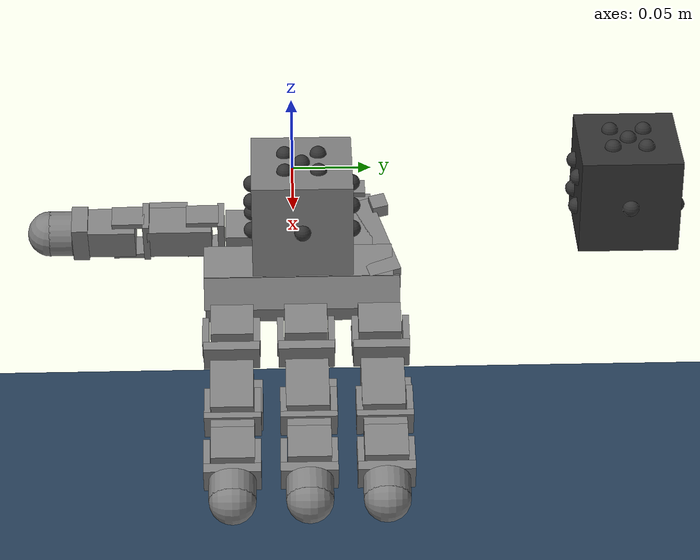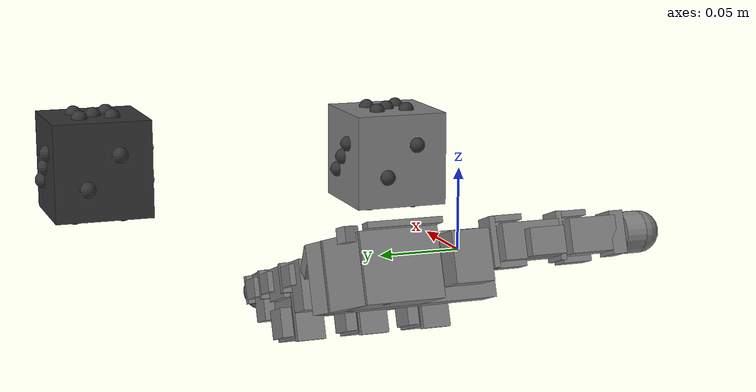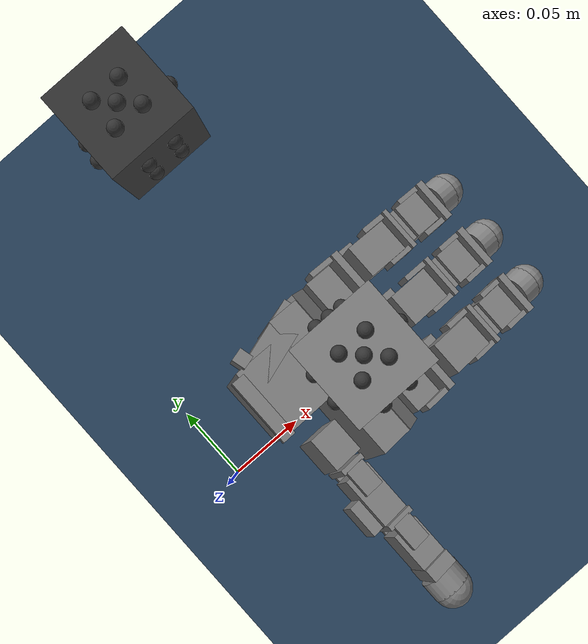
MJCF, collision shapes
<mujoco model="caltech_leap_cube">
  <include file="caltech_leap_components/assets.xml" />
  <include file="caltech_leap_components/params_and_default_sim.xml" />

  <worldbody>
    <!-- Ground and light -->
    <light pos="0 0 3" dir="0 0 -1" directional="false" />
    <body name="floor" pos="0 0 0">
      <geom name="floor" pos="0 0 -1.25" size="10 10 1" type="box" material="groundplane" />
    </body>

    <!-- goal cube -->
    <body name="goal" mocap="true" pos="0.1 0.2 0.0475">
      <include file="leap_components/cube_pips_vis.xml" />
    </body>

    <!-- cube and hand -->
    <body name="cube" pos="0.11 0.005 0.04" quat="1 0 0 0">
      <freejoint/>
      <include file="leap_components/cube_pips_coll.xml" />
    </body>
    <body name="leap_hand" pos="0.0 0.0 0.0" quat="1.0 0.0 0.0 0.0">
      <include file="caltech_leap_components/leap_rh.xml" />
    </body>
  </worldbody>

  <!-- Sensors for the cube -->
  <sensor>
    <framepos name="cube_position" objtype="body" objname="cube" reftype="site" refname="grasp_site" />
    <framequat name="cube_orientation" objtype="body" objname="cube" reftype="body" refname="goal"/>
  </sensor>

</mujoco>

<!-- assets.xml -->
<mujoco model="leap_assets">
  <asset>
    <!-- meshes -->
    <mesh name="palm_right" file="../../meshes/leap/palm_right.obj"/>
    <mesh name="base" file="../../meshes/leap/base.obj"/>
    <mesh name="proximal" file="../../meshes/leap/proximal.obj"/>
    <mesh name="medial" file="../../meshes/leap/medial.obj"/>
    <mesh name="distal" file="../../meshes/leap/distal.obj"/>
    <mesh name="tip" file="../../meshes/leap/tip.obj"/>
    <mesh name="thumb_base" file="../../meshes/leap/thumb_base.obj"/>
    <mesh name="thumb_proximal" file="../../meshes/leap/thumb_proximal.obj"/>
    <mesh name="thumb_distal" file="../../meshes/leap/thumb_distal.obj"/>
    <mesh name="thumb_tip" file="../../meshes/leap/thumb_tip.obj"/>
    <mesh name="leap_mount" file="../../meshes/leap/leap_mount.obj"/>

    <!-- scene -->
    <texture type="skybox" builtin="gradient" rgb1="0.3 0.5 0.7" rgb2="0 0 0" width="512"
      height="3072" />
    <texture type="2d" name="groundplane" builtin="checker" mark="edge" rgb1="0.2 0.3 0.4"
      rgb2="0.1 0.2 0.3"
      markrgb="0.8 0.8 0.8" width="300" height="300" />
    <material name="groundplane" texture="groundplane" texuniform="true" texrepeat="5 5"
      reflectance="0.2" />
  </asset>
</mujoco>

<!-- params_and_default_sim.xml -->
<mujoco model="leap_cube_default">
  <compiler angle="radian" />
  <option
    timestep="0.002"
    integrator="implicitfast"
    cone="elliptic"
    impratio="1.0" />

  <asset>
    <material name="black" rgba="0.2 0.2 0.2 1" />
  </asset>

  <!-- Viewpoint and other visual features -->
  <statistic extent="0.4" center="0.3 0.1 0" />
  <visual>
    <quality shadowsize="8192" />
    <global azimuth="180" elevation="-30" offheight="376" offwidth="672" fovy="70" />
    <headlight diffuse="0.6 0.6 0.6" ambient="0.3 0.3 0.3" specular="0 0 0" />
    <rgba haze="0.15 0.25 0.35 1" />
  </visual>

  <!-- defaults -->
  <default>
    <!-- constraint stiffness -->
    <geom solimp="0.99 0.999 0.01 0.001 1" solref="0.001 1" friction=".2"/>

    <!-- actuator defaults -->
    <position kp="0.3" kv="0.1" />
    <joint damping="0.03" frictionloss="0.001"/>

    <!-- geom class defaults -->
    <default class="visual">
      <geom group="1" type="mesh" contype="0" conaffinity="0" density="0" material="black" />
    </default>
    <default class="cube">
      <geom friction="0.3 0.05 0.01"/>
    </default>
    <default class="tip">
      <geom friction="1.0 0.1 0.001"/>
    </default>

    <!-- joint class defaults -->
    <default class="mcp">
      <joint pos="0 0 0" axis="0 0 -1"
        limited="true" range="-0.314 2.23" />
      <position ctrlrange="-0.314 2.23" />
    </default>
    <default class="rot">
      <joint pos="0 0 0" axis="0 0 -1"
        limited="true" range="-1.047 1.047" />
      <position ctrlrange="-1.047 1.047" />
    </default>
    <default class="pip">
      <joint pos="0 0 0" axis="0 0 -1"
        limited="true" range="-0.506 1.885" />
      <position ctrlrange="-0.506 1.885" />
    </default>
    <default class="dip">
      <joint pos="0 0 0" axis="0 0 -1"
        limited="true" range="-0.366 2.042" />
      <position ctrlrange="-0.366 2.042" />
    </default>
    <default class="thumb_cmc">
      <joint pos="0 0 0" axis="0 0 -1"
        limited="true" range="-0.349 2.094" />
      <position ctrlrange="-0.349 2.094" />
    </default>
    <default class="thumb_axl">
      <joint pos="0 0 0" axis="0 0 -1"
        limited="true" range="-0.349 2.094" />
      <position ctrlrange="-0.349 2.094" />
    </default>
    <default class="thumb_mcp">
      <joint pos="0 0 0" axis="0 0 -1"
        limited="true" range="-0.47 2.443" />
      <position ctrlrange="-0.47 2.443" />
    </default>
    <default class="thumb_ipl">
      <joint pos="0 0 0" axis="0 0 -1"
        limited="true" range="-1.34 1.88" />
      <position ctrlrange="-1.34 1.88" />
    </default>
  </default>

  <!-- collision filtering -->
  <contact>
    <!-- filter the palm from all other finger bodies except the tips -->
    <exclude body1="palm_right" body2="if_bs" />
    <exclude body1="palm_right" body2="mf_bs" />
    <exclude body1="palm_right" body2="rf_bs" />
    <exclude body1="palm_right" body2="th_mp" />

    <exclude body1="palm_right" body2="if_px" />
    <exclude body1="palm_right" body2="mf_px" />
    <exclude body1="palm_right" body2="rf_px" />
    <exclude body1="palm_right" body2="th_bs" />

    <exclude body1="palm_right" body2="if_md" />
    <exclude body1="palm_right" body2="mf_md" />
    <exclude body1="palm_right" body2="rf_md" />
    <exclude body1="palm_right" body2="th_px" />

    <!-- none of the base fingertip geoms can touch each other -->
    <exclude body1="if_bs" body2="mf_bs" />
    <exclude body1="if_bs" body2="rf_bs" />
    <exclude body1="mf_bs" body2="rf_bs" />

    <exclude body1="th_mp" body2="if_bs" />
    <exclude body1="th_mp" body2="mf_bs" />
    <exclude body1="th_mp" body2="rf_bs" />

    <!-- filter all hand geoms and floor -->
    <exclude body1="floor" body2="palm_right" />
    <exclude body1="floor" body2="if_bs" />
    <exclude body1="floor" body2="if_px" />
    <exclude body1="floor" body2="if_md" />
    <exclude body1="floor" body2="if_ds" />
    <exclude body1="floor" body2="mf_bs" />
    <exclude body1="floor" body2="mf_px" />
    <exclude body1="floor" body2="mf_md" />
    <exclude body1="floor" body2="mf_ds" />
    <exclude body1="floor" body2="rf_bs" />
    <exclude body1="floor" body2="rf_px" />
    <exclude body1="floor" body2="rf_md" />
    <exclude body1="floor" body2="rf_ds" />
    <exclude body1="floor" body2="th_mp" />
    <exclude body1="floor" body2="th_bs" />
    <exclude body1="floor" body2="th_px" />
    <exclude body1="floor" body2="th_ds" />
  </contact>

  <!-- actuators -->
  <actuator>
    <!-- index -->
    <position name="if_mcp_act" joint="if_mcp" class="mcp" />
    <position name="if_rot_act" joint="if_rot" class="rot" />
    <position name="if_pip_act" joint="if_pip" class="pip" />
    <position name="if_dip_act" joint="if_dip" class="dip" />

    <!-- middle -->
    <position name="mf_mcp_act" joint="mf_mcp" class="mcp" />
    <position name="mf_rot_act" joint="mf_rot" class="rot" />
    <position name="mf_pip_act" joint="mf_pip" class="pip" />
    <position name="mf_dip_act" joint="mf_dip" class="dip" />

    <!-- ring -->
    <position name="rf_mcp_act" joint="rf_mcp" class="mcp" />
    <position name="rf_rot_act" joint="rf_rot" class="rot" />
    <position name="rf_pip_act" joint="rf_pip" class="pip" />
    <position name="rf_dip_act" joint="rf_dip" class="dip" />

    <!-- thumb -->
    <position name="th_cmc_act" joint="th_cmc" class="thumb_cmc" />
    <position name="th_axl_act" joint="th_axl" class="thumb_axl" />
    <position name="th_mcp_act" joint="th_mcp" class="thumb_mcp" />
    <position name="th_ipl_act" joint="th_ipl" class="thumb_ipl" />
  </actuator>

  <!-- sensors -->
  <sensor>
    <!-- index -->
    <jointpos name="if_mcp_sensor" joint="if_mcp" />
    <jointpos name="if_rot_sensor" joint="if_rot" />
    <jointpos name="if_pip_sensor" joint="if_pip" />
    <jointpos name="if_dip_sensor" joint="if_dip" />

    <!-- middle -->
    <jointpos name="mf_mcp_sensor" joint="mf_mcp" />
    <jointpos name="mf_rot_sensor" joint="mf_rot" />
    <jointpos name="mf_pip_sensor" joint="mf_pip" />
    <jointpos name="mf_dip_sensor" joint="mf_dip" />

    <!-- ring -->
    <jointpos name="rf_mcp_sensor" joint="rf_mcp" />
    <jointpos name="rf_rot_sensor" joint="rf_rot" />
    <jointpos name="rf_pip_sensor" joint="rf_pip" />
    <jointpos name="rf_dip_sensor" joint="rf_dip" />

    <!-- thumb -->
    <jointpos name="th_cmc_sensor" joint="th_cmc" />
    <jointpos name="th_axl_sensor" joint="th_axl" />
    <jointpos name="th_mcp_sensor" joint="th_mcp" />
    <jointpos name="th_ipl_sensor" joint="th_ipl" />
  </sensor>

</mujoco>

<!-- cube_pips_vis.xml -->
<mujoco model="goal">
  <!-- same as cube_pips_coll except this geom is visual only -->
  <geom name="cube_vis" type="box" size=".03 .03 .03" mass="0.108" class="visual" />

  <!-- face 1 -->
  <geom name="cube_vis_visual_face_1_1" pos="0.03 0.0 0.0" size="0.005" class="visual" type="sphere"/>

  <!-- face 2 -->
  <geom name="cube_vis_visual_face_2_1" pos="-0.03 -0.01 0.01" size="0.005" class="visual" type="sphere"/>
  <geom name="cube_vis_visual_face_2_2" pos="-0.03 0.01 -0.01" size="0.005" class="visual" type="sphere"/>

  <!-- face 3 -->
  <geom name="cube_vis_visual_face_3_1" pos="-0.01 0.03 0.01" size="0.005" class="visual" type="sphere"/>
  <geom name="cube_vis_visual_face_3_2" pos="0.0 0.03 0.0" size="0.005" class="visual" type="sphere"/>
  <geom name="cube_vis_visual_face_3_3" pos="0.01 0.03 -0.01" size="0.005" class="visual" type="sphere"/>

  <!-- face 4 -->
  <geom name="cube_vis_visual_face_4_1" pos="-0.01 -0.03  0.01" size="0.005" class="visual" type="sphere"/>
  <geom name="cube_vis_visual_face_4_2" pos="-0.01 -0.03  -0.01" size="0.005" class="visual" type="sphere"/>
  <geom name="cube_vis_visual_face_4_3" pos="0.01 -0.03 0.01" size="0.005" class="visual" type="sphere"/>
  <geom name="cube_vis_visual_face_4_4" pos="0.01 -0.03 -0.01" size="0.005" class="visual" type="sphere"/>

  <!-- face 5 -->
  <geom name="cube_vis_visual_face_5_1" pos="-0.01 0.01 0.03" size="0.005" class="visual" type="sphere"/>
  <geom name="cube_vis_visual_face_5_2" pos="-0.01 -0.01 0.03" size="0.005" class="visual" type="sphere"/>
  <geom name="cube_vis_visual_face_5_3" pos="0.01 0.01 0.03" size="0.005" class="visual" type="sphere"/>
  <geom name="cube_vis_visual_face_5_4" pos="0.01 -0.01 0.03" size="0.005" class="visual" type="sphere"/>
  <geom name="cube_vis_visual_face_5_5" pos="0.0 0.0 0.03" size="0.005" class="visual" type="sphere"/>

  <!-- face 6 -->
  <geom name="cube_vis_visual_face_6_1" pos="0.01 0.015 -0.03" size="0.005" class="visual" type="sphere"/>
  <geom name="cube_vis_visual_face_6_2" pos="0.01 -0.015 -0.03" size="0.005" class="visual" type="sphere"/>
  <geom name="cube_vis_visual_face_6_3" pos="0.0 0.015 -0.03" size="0.005" class="visual" type="sphere"/>
  <geom name="cube_vis_visual_face_6_4" pos="0.0 -0.015 -0.03" size="0.005" class="visual" type="sphere"/>
  <geom name="cube_vis_visual_face_6_5" pos="-0.01 0.015 -0.03" size="0.005" class="visual" type="sphere"/>
  <geom name="cube_vis_visual_face_6_6" pos="-0.01 -0.015 -0.03" size="0.005" class="visual" type="sphere"/>
</mujoco>

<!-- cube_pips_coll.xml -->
<mujoco model="cube">
  <geom name="cube" type="box" size=".03 .03 .03" mass="0.108"/>

  <!-- face 1 -->
  <geom name="cube_visual_face_1_1" pos="0.03 0.0 0.0" size="0.005" class="visual" type="sphere"/>

  <!-- face 2 -->
  <geom name="cube_visual_face_2_1" pos="-0.03 -0.01 0.01" size="0.005" class="visual" type="sphere"/>
  <geom name="cube_visual_face_2_2" pos="-0.03 0.01 -0.01" size="0.005" class="visual" type="sphere"/>

  <!-- face 3 -->
  <geom name="cube_visual_face_3_1" pos="-0.01 0.03 0.01" size="0.005" class="visual" type="sphere"/>
  <geom name="cube_visual_face_3_2" pos="0.0 0.03 0.0" size="0.005" class="visual" type="sphere"/>
  <geom name="cube_visual_face_3_3" pos="0.01 0.03 -0.01" size="0.005" class="visual" type="sphere"/>

  <!-- face 4 -->
  <geom name="cube_visual_face_4_1" pos="-0.01 -0.03  0.01" size="0.005" class="visual" type="sphere"/>
  <geom name="cube_visual_face_4_2" pos="-0.01 -0.03  -0.01" size="0.005" class="visual" type="sphere"/>
  <geom name="cube_visual_face_4_3" pos="0.01 -0.03 0.01" size="0.005" class="visual" type="sphere"/>
  <geom name="cube_visual_face_4_4" pos="0.01 -0.03 -0.01" size="0.005" class="visual" type="sphere"/>

  <!-- face 5 -->
  <geom name="cube_visual_face_5_1" pos="-0.01 0.01 0.03" size="0.005" class="visual" type="sphere"/>
  <geom name="cube_visual_face_5_2" pos="-0.01 -0.01 0.03" size="0.005" class="visual" type="sphere"/>
  <geom name="cube_visual_face_5_3" pos="0.01 0.01 0.03" size="0.005" class="visual" type="sphere"/>
  <geom name="cube_visual_face_5_4" pos="0.01 -0.01 0.03" size="0.005" class="visual" type="sphere"/>
  <geom name="cube_visual_face_5_5" pos="0.0 0.0 0.03" size="0.005" class="visual" type="sphere"/>

  <!-- face 6 -->
  <geom name="cube_visual_face_6_1" pos="0.01 0.015 -0.03" size="0.005" class="visual" type="sphere"/>
  <geom name="cube_visual_face_6_2" pos="0.01 -0.015 -0.03" size="0.005" class="visual" type="sphere"/>
  <geom name="cube_visual_face_6_3" pos="0.0 0.015 -0.03" size="0.005" class="visual" type="sphere"/>
  <geom name="cube_visual_face_6_4" pos="0.0 -0.015 -0.03" size="0.005" class="visual" type="sphere"/>
  <geom name="cube_visual_face_6_5" pos="-0.01 0.015 -0.03" size="0.005" class="visual" type="sphere"/>
  <geom name="cube_visual_face_6_6" pos="-0.01 -0.015 -0.03" size="0.005" class="visual" type="sphere"/>

  <!-- trace for visualization -->
  <site name="trace_cube" pos="0 0 0" size="0.01"/>
</mujoco>

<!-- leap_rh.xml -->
<mujoco model="leap_rh">

  <body name="leap_mount" pos="0 0 0" quat="1 0 0 0">
    <geom name="leap_mount_visual" pos="0 0 0" quat="1 0 0 0" class="visual" mesh="leap_mount" />
    <geom name="leap_mount_collision_0" size="0.002 0.025 0.005" pos="0.0405 0.02 0.009"
      quat="0.57346234 0 0.81923192 0" type="box" />
    <geom name="leap_mount_collision_1" size="0.005 0.005 0.005" pos="0.05 0.053 0.002"
      quat="0.4987168 0.64994038 -0.34910175 0.45495826" type="box" />

    <!-- the grasp site: delete the group to view it temporarily -->
    <site name="grasp_site" pos="0.11 0.005 0.03" group="4" />

    <body name="palm_right" pos="0.124 -0.0305 -0.06045" quat="0 1 0 -0.175" >
      <!-- palm -->
      <inertial pos="-0.049542 -0.042914 -0.010227" quat="0.565586 0.427629 -0.574956 0.408254" mass="0.237" diaginertia="0.000407345 0.000304759 0.000180736"/>
      <geom name="palm_visual" pos="-0.02 0.02575 -0.0347" quat="1 0 0 0" class="visual" mesh="palm_right"/>
      <geom name="palm_collision_1" size="0.011 0.013 0.017" pos="-0.009 0.008 -0.011" type="box"/>
      <geom name="palm_collision_2" size="0.011 0.013 0.017" pos="-0.009 -0.037 -0.011" type="box"/>
      <geom name="palm_collision_3" size="0.011 0.013 0.017" pos="-0.009 -0.082 -0.011" type="box"/>
      <geom name="palm_collision_4" size="0.029 0.01 0.023" pos="-0.066 -0.078 -0.0115" quat="0.989016 0 0 -0.147806" type="box"/>
      <geom name="palm_collision_6" size="0.005 0.06 0.01" pos="-0.032 -0.035 -0.024" quat="0.923956 0 0.382499 0" type="box"/>
      <geom name="palm_collision_7" size="0.012 0.058 0.023" pos="-0.048 -0.033 -0.0115" type="box"/>
      <geom name="palm_collision_8" size="0.022 0.026 0.023" pos="-0.078 -0.053 -0.0115" type="box"/>

      <!-- index -->
      <body name="if_bs" pos="-0.007 0.023 -0.0187" quat="0.500003 0.5 0.5 -0.499997">
        <inertial pos="-0.022516 0.033882 0.016359" quat="0.388092 0.677951 -0.247713 0.573067" mass="0.044" diaginertia="1.74972e-05 1.61504e-05 7.21342e-06"/>
        <joint name="if_mcp" class="mcp"/>
        <geom name="if_bs_visual" pos="0.0084 0.0077 0.01465" quat="1 0 0 0" class="visual" mesh="base"/>
        <geom name="if_bs_collision_1" size="0.01 0.003 0.017" pos="0 0.018 0.0147" type="box"/>
        <geom name="if_bs_collision_2" size="0.014 0.02 0.01" pos="-0.027 0.042 0.015" type="box"/>
        <geom name="if_bs_collision_3" size="0.017 0.003 0.01" pos="-0.0262 0.02 0.0146" type="box"/>
        <geom name="if_bs_collision_4" size="0.01 0.012 0.004" pos="-0.0295 0.035 0.029" type="box"/>
        <geom name="if_bs_collision_5" size="0.007 0.01 0.002" pos="0 0.005 0.03" type="box"/>
        <geom name="if_bs_collision_6" size="0.007 0.01 0.002" pos="0 0.005 -0.001" type="box"/>

        <body name="if_px" pos="-0.0122 0.0381 0.0145" quat="0.500003 -0.5 -0.499997 0.5">
          <inertial pos="0.0075 -0.0002 -0.011" quat="0 0.707107 0 0.707107" mass="0.032" diaginertia="4.8853e-06 4.3733e-06 3.0933e-06"/>
          <joint name="if_rot" class="rot"/>
          <geom name="if_px_visual" pos="0.0096 0.0002 0.0007" quat="0.500003 -0.5 -0.5 -0.499997" class="visual" mesh="proximal"/>
          <geom name="if_px_collision" size="0.017 0.013 0.011" pos="0.0075 -0.0002 -0.011" type="box"/>

          <body name="if_md" pos="0.015 0.0143 -0.013" quat="0.500003 0.5 -0.5 0.499997">
            <inertial pos="0.0054215 -0.029148 0.015" quat="0.687228 0.687228 0.166487 0.166487" mass="0.037" diaginertia="8.28004e-06 8.1598e-06 5.39516e-06"/>
            <joint name="if_pip" class="pip"/>
            <geom name="if_md_visual" pos="0.0211 -0.0084 0.0097" quat="2.67949e-08 -1 0 0" class="visual" mesh="medial"/>
            <geom name="if_md_collision_1" size="0.008 0.003 0.013" pos="0 -0.02 0.015" type="box"/>
            <geom name="if_md_collision_2" size="0.01 0.002 0.017" pos="0 -0.016 0.015" type="box"/>
            <geom name="if_md_collision_3" size="0.007 0.01 0.002" pos="0 -0.0045 0.03" type="box"/>
            <geom name="if_md_collision_4" size="0.007 0.01 0.002" pos="0 -0.0045 0" type="box"/>
            <geom name="if_md_collision_5" size="0.017 0.011 0.013" pos="0.0075 -0.035 0.015" type="box"/>

            <body name="if_ds" pos="0 -0.0361 0.0002">
              <inertial pos="-0.0008794 -0.027019 0.014594" quat="0.702905 0.710643 -0.0212937 -0.0214203" mass="0.016" diaginertia="3.71863e-06 3.02396e-06 1.6518e-06"/>
              <joint name="if_dip" class="dip"/>
              <geom name="if_ds_visual" pos="0.0132 -0.0061 0.0144" quat="0 1 0 0" class="visual" mesh="distal"/>
              <geom name="if_ds_collision_1" size="0.01 0.003 0.017" pos="0 -0.017 0.0145" type="box"/>
              <geom name="if_ds_collision_2" size="0.007 0.011 0.002" pos="0 -0.006 0.0295" type="box"/>
              <geom name="if_ds_collision_3" size="0.007 0.011 0.002" pos="0 -0.006 -0.0005" type="box"/>

              <geom name="if_tip_collision_1" size="0.014 0.007" pos="0.0 -0.027 0.0145" quat="1 1 0 0" type="cylinder" class="tip"/>
              <geom name="if_tip_collision_2" size="0.014" pos="0.0 -0.034 0.0145" quat="1 0 0 0" type="sphere" class="tip"/>
            </body>

          </body>
        </body>
      </body>  <!-- index -->

      <!-- middle -->
      <body name="mf_bs" pos="-0.0071 -0.0224 -0.0187" quat="0.500003 0.5 0.5 -0.499997">
        <inertial pos="-0.022516 0.033882 0.016359" quat="0.388092 0.677951 -0.247713 0.573067" mass="0.044" diaginertia="1.74972e-05 1.61504e-05 7.21342e-06"/>
        <joint name="mf_mcp" class="mcp"/>
        <geom name="mf_bs_visual" pos="0.0084 0.0077 0.01465" quat="1 0 0 0" class="visual" mesh="base"/>
        <geom name="mf_bs_collision_1" size="0.01 0.003 0.017" pos="0 0.018 0.0147" type="box"/>
        <geom name="mf_bs_collision_2" size="0.014 0.02 0.01" pos="-0.027 0.042 0.015" type="box"/>
        <geom name="mf_bs_collision_3" size="0.017 0.003 0.01" pos="-0.0262 0.02 0.0146" type="box"/>
        <geom name="mf_bs_collision_4" size="0.01 0.012 0.004" pos="-0.0295 0.035 0.029" type="box"/>
        <geom name="mf_bs_collision_5" size="0.007 0.01 0.002" pos="0 0.005 0.03" type="box"/>
        <geom name="mf_bs_collision_6" size="0.007 0.01 0.002" pos="0 0.005 -0.001" type="box"/>

        <body name="mf_px" pos="-0.0122 0.0381 0.0145" quat="0.500003 -0.5 -0.499997 0.5">
          <inertial pos="0.0075 -0.0002 -0.011" quat="0 0.707107 0 0.707107" mass="0.032" diaginertia="4.8853e-06 4.3733e-06 3.0933e-06"/>
          <joint name="mf_rot" class="rot"/>
          <geom name="mf_px_visual" pos="0.0096 0.0003 0.0007" quat="0.500003 -0.5 -0.5 -0.499997" class="visual" mesh="proximal"/>
          <geom name="mf_px_collision" size="0.017 0.013 0.011" pos="0.0075 -0.0002 -0.011" type="box"/>

          <body name="mf_md" pos="0.015 0.0143 -0.013" quat="0.500003 0.5 -0.5 0.499997">
            <inertial pos="0.0054215 -0.029148 0.015" quat="0.687228 0.687228 0.166487 0.166487" mass="0.037" diaginertia="8.28004e-06 8.1598e-06 5.39516e-06"/>
            <joint name="mf_pip" class="pip"/>
            <geom name="mf_md_visual" pos="0.0211 -0.0084 0.0097" quat="1.32679e-06 -1 0 0" class="visual" mesh="medial"/>
            <geom name="mf_md_collision_1" size="0.008 0.003 0.013" pos="0 -0.02 0.015" type="box"/>
            <geom name="mf_md_collision_2" size="0.01 0.002 0.017" pos="0 -0.016 0.015" type="box"/>
            <geom name="mf_md_collision_3" size="0.007 0.01 0.002" pos="0 -0.0045 0.03" type="box"/>
            <geom name="mf_md_collision_4" size="0.007 0.01 0.002" pos="0 -0.0045 0" type="box"/>
            <geom name="mf_md_collision_5" size="0.017 0.011 0.013" pos="0.0075 -0.035 0.015" type="box"/>

            <body name="mf_ds" pos="0 -0.0361 0.0002">
              <inertial pos="-0.0008794 -0.027019 0.014594" quat="0.702905 0.710643 -0.0212937 -0.0214203" mass="0.016" diaginertia="3.71863e-06 3.02396e-06 1.6518e-06"/>
              <joint name="mf_dip" class="dip"/>
              <geom name="mf_ds_visual" pos="0.0132 -0.0061 0.0145" quat="1.32679e-06 1 0 0" class="visual" mesh="distal"/>
              <geom name="mf_ds_collision_1" size="0.01 0.003 0.017" pos="0 -0.017 0.0145" type="box"/>
              <geom name="mf_ds_collision_2" size="0.007 0.011 0.002" pos="0 -0.006 0.0295" type="box"/>
              <geom name="mf_ds_collision_3" size="0.007 0.011 0.002" pos="0 -0.006 -0.0005" type="box"/>

              <geom name="mf_tip_collision_1" size="0.014 0.007" pos="0.0 -0.027 0.0145" quat="1 1 0 0" type="cylinder" class="tip"/>
              <geom name="mf_tip_collision_2" size="0.014" pos="0.0 -0.034 0.0145" quat="1 0 0 0" type="sphere" class="tip"/>
            </body>

          </body>
        </body>
      </body>  <!-- middle -->

      <!-- ring -->
      <body name="rf_bs" pos="-0.00709 -0.0678 -0.0187" quat="0.500003 0.5 0.5 -0.499997">
        <inertial pos="-0.022516 0.033882 0.016359" quat="0.388092 0.677951 -0.247713 0.573067" mass="0.044" diaginertia="1.74972e-05 1.61504e-05 7.21342e-06"/>
        <joint name="rf_mcp" class="mcp"/>
        <geom name="rf_bs_visual" pos="0.0084 0.0077 0.01465" quat="1 0 0 0" class="visual" mesh="base"/>
        <geom name="rf_bs_collision_1" size="0.01 0.003 0.017" pos="0 0.018 0.0147" type="box"/>
        <geom name="rf_bs_collision_2" size="0.014 0.02 0.01" pos="-0.027 0.042 0.015" type="box"/>
        <geom name="rf_bs_collision_3" size="0.017 0.003 0.01" pos="-0.0262 0.02 0.0146" type="box"/>
        <geom name="rf_bs_collision_4" size="0.01 0.012 0.004" pos="-0.0295 0.035 0.029" type="box"/>
        <geom name="rf_bs_collision_5" size="0.007 0.01 0.002" pos="0 0.005 0.03" type="box"/>
        <geom name="rf_bs_collision_6" size="0.007 0.01 0.002" pos="0 0.005 -0.001" type="box"/>

        <body name="rf_px" pos="-0.0122 0.0381 0.0145" quat="0.500003 -0.5 -0.499997 0.5">
          <inertial pos="0.0075 -0.0002 -0.011" quat="0 0.707107 0 0.707107" mass="0.032" diaginertia="4.8853e-06 4.3733e-06 3.0933e-06"/>
          <joint name="rf_rot" class="rot"/>
          <geom name="rf_px_visual" pos="0.0096 0.0003 0.0007" quat="0.500003 -0.5 -0.5 -0.499997" class="visual" mesh="proximal"/>
          <geom name="rf_px_collision" size="0.017 0.013 0.011" pos="0.0075 -0.0002 -0.011" type="box"/>

          <body name="rf_md" pos="0.015 0.0143 -0.013" quat="0.500003 0.5 -0.5 0.499997">
            <inertial pos="0.0054215 -0.029148 0.015" quat="0.687228 0.687228 0.166487 0.166487" mass="0.037" diaginertia="8.28004e-06 8.1598e-06 5.39516e-06"/>
            <joint name="rf_pip" class="pip"/>
            <geom name="rf_md_visual" pos="0.0211 -0.0084 0.0097" quat="1.32679e-06 -1 0 0" class="visual" mesh="medial"/>
            <geom name="rf_md_collision_1" size="0.008 0.003 0.013" pos="0 -0.02 0.015" type="box"/>
            <geom name="rf_md_collision_2" size="0.01 0.002 0.017" pos="0 -0.016 0.015" type="box"/>
            <geom name="rf_md_collision_3" size="0.007 0.01 0.002" pos="0 -0.0045 0.03" type="box"/>
            <geom name="rf_md_collision_4" size="0.007 0.01 0.002" pos="0 -0.0045 0" type="box"/>
            <geom name="rf_md_collision_5" size="0.017 0.011 0.013" pos="0.0075 -0.035 0.015" type="box"/>

            <body name="rf_ds" pos="0 -0.03609 0.0002">
              <inertial pos="-0.0008794 -0.027019 0.014594" quat="0.702905 0.710643 -0.0212937 -0.0214203" mass="0.016" diaginertia="3.71863e-06 3.02396e-06 1.6518e-06"/>
              <joint name="rf_dip" class="dip"/>
              <geom name="rf_ds_visual" pos="0.0132 -0.0061 0.0145" quat="1.32679e-06 1 0 0" class="visual" mesh="distal"/>
              <geom name="rf_ds_collision_1" size="0.01 0.003 0.017" pos="0 -0.017 0.0145" type="box"/>
              <geom name="rf_ds_collision_2" size="0.007 0.011 0.002" pos="0 -0.006 0.0295" type="box"/>
              <geom name="rf_ds_collision_3" size="0.007 0.011 0.002" pos="0 -0.006 -0.0005" type="box"/>

              <geom name="rf_tip_collision_1" size="0.014 0.007" pos="0.0 -0.027 0.0145" quat="1 1 0 0" type="cylinder" class="tip"/>
              <geom name="rf_tip_collision_2" size="0.014" pos="0.0 -0.034 0.0145" quat="1 0 0 0" type="sphere" class="tip"/>
            </body>

          </body>
        </body>
      </body>  <!-- ring -->

      <!-- thumb -->
      <body name="th_mp" pos="-0.0693 -0.0012 -0.0216" quat="0.707109 0 0.707105 0">
        <inertial pos="0.0075 -0.0002 -0.011" quat="0 0.707107 0 0.707107" mass="0.032" diaginertia="4.8853e-06 4.3733e-06 3.0933e-06"/>
        <joint name="th_cmc" class="thumb_cmc"/>
        <geom name="th_mp_visual" pos="-0.0053 0.0003 0.00078" quat="0.500003 -0.5 -0.5 -0.499997" class="visual" mesh="proximal"/>
        <geom name="th_mp_collision" size="0.017 0.013 0.011" pos="-0.0075 -0.0002 -0.011" type="box"/>

        <body name="th_bs" pos="0 0.0143 -0.013" quat="0.500003 0.5 -0.5 0.499997">
          <inertial pos="0 0 -0.0070806" quat="0.707107 0.707107 0 0" mass="0.003" diaginertia="6.1932e-07 5.351e-07 2.1516e-07"/>
          <joint name="th_axl" class="thumb_axl"/>
          <geom name="th_bs_visual" pos="0.01196 0 -0.0158" quat="0.707109 0.707105 0 0" class="visual" mesh="thumb_base"/>
          <geom name="th_bs_collision_1" size="0.009 0.0165 0.002" pos="0 0 -0.0015" type="box"/>
          <geom name="th_bs_collision_2" size="0.007 0.002 0.01" pos="0 -0.015 -0.013" type="box"/>
          <geom name="th_bs_collision_3" size="0.007 0.002 0.01" pos="0 0.015 -0.013" type="box"/>

          <body name="th_px" pos="0 0.0145 -0.017" quat="0.707109 -0.707105 0 0">
            <inertial pos="-0.0020593 0.015912 -0.013733" quat="0.698518 0.697382 -0.104933 0.121324" mass="0.038" diaginertia="9.87104e-06 9.32653e-06 4.36203e-06"/>
            <joint name="th_mcp" class="thumb_mcp"/>
            <geom name="th_px_visual" pos="0.0439 0.0579 -0.0086" quat="1 0 0 0" class="visual" mesh="thumb_proximal"/>
            <geom name="th_px_collision_1" size="0.01 0.02 0.012" pos="0 0.0105 -0.014" type="box"/>
            <geom name="th_px_collision_2" size="0.01 0.002 0.016" pos="0 0.031 -0.015" type="box"/>
            <geom name="th_px_collision_3" size="0.007 0.01 0.002" pos="0 0.042 0.001" type="box"/>
            <geom name="th_px_collision_4" size="0.007 0.01 0.002" pos="0 0.042 -0.029" type="box"/>
            <geom name="th_px_collision_5" size="0.005 0.012 0.009" pos="-0.0135 0.0175 -0.011656" type="box"/>

            <body name="th_ds" pos="0 0.0466 0.0002" quat="1.32679e-06 0 0 1">
              <inertial pos="0.00096191 -0.024203 -0.014419" quat="0.35287 0.311272 -0.632839 0.614904" mass="0.049" diaginertia="2.08591e-05 2.0402e-05 4.71335e-06"/>
              <joint name="th_ipl" class="thumb_ipl"/>
              <geom name="th_ds_visual" pos="0.0625 0.0784 0.0489" quat="1 0 0 0" class="visual" mesh="thumb_distal"/>
              <geom name="th_ds_collision_1" size="0.01 0.0165 0.0115" pos="0 -0.008 -0.01425" type="box"/>
              <geom name="th_ds_collision_2" size="0.01 0.005 0.01425" pos="0 -0.0255 -0.01425" type="box"/>

              <geom name="th_tip_collision_1" size="0.014 0.007" pos="0.0 -0.0375 -0.01425" quat="1 1 0 0" type="cylinder" class="tip"/>
              <geom name="th_tip_collision_2" size="0.014" pos="0.0 -0.0445 -0.01425" quat="1 0 0 0" type="sphere" class="tip"/>
            </body>

          </body>
        </body>
      </body>  <!-- thumb -->

    </body>  <!-- palm -->
  </body>  <!-- leap_mount -->
</mujoco>
